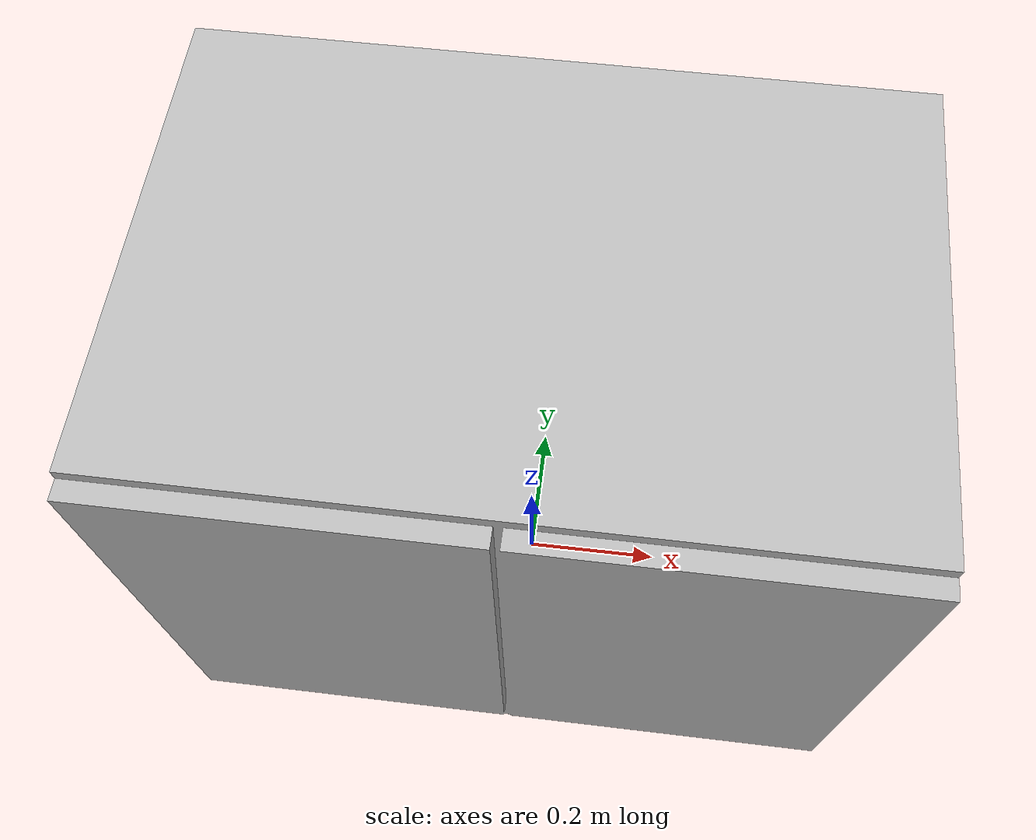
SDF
<?xml version="1.0"?>
<sdf version="1.4">
<model name="skrin_90_low">
	<pose>0 0 0 0 0 0</pose>
	<static>true</static>
	<link name="skrin_90_low_collision">
		<collision name="skrin_90_low_collision">
		<geometry>
			<mesh>
				<uri>model://skrin_90_low/meshes/model.dae</uri>

			</mesh>
		</geometry>
		</collision>
	<visual name="skrin_90_low_mesh">
	<cast_shadows>false</cast_shadows>
		<geometry>
			<mesh>
				<uri> model://skrin_90_low/meshes/model.dae</uri>

			</mesh>
		</geometry>
		<material>
		<script>
			<uri> model://skrin_90_low/material/scripts</uri>
			<uri> model://skrin_90_low/material/textures</uri>
			<name>skrin_90_low/Diffuse</name>
		</script>
		</material>

	</visual>
</link>
</model>
</sdf>
